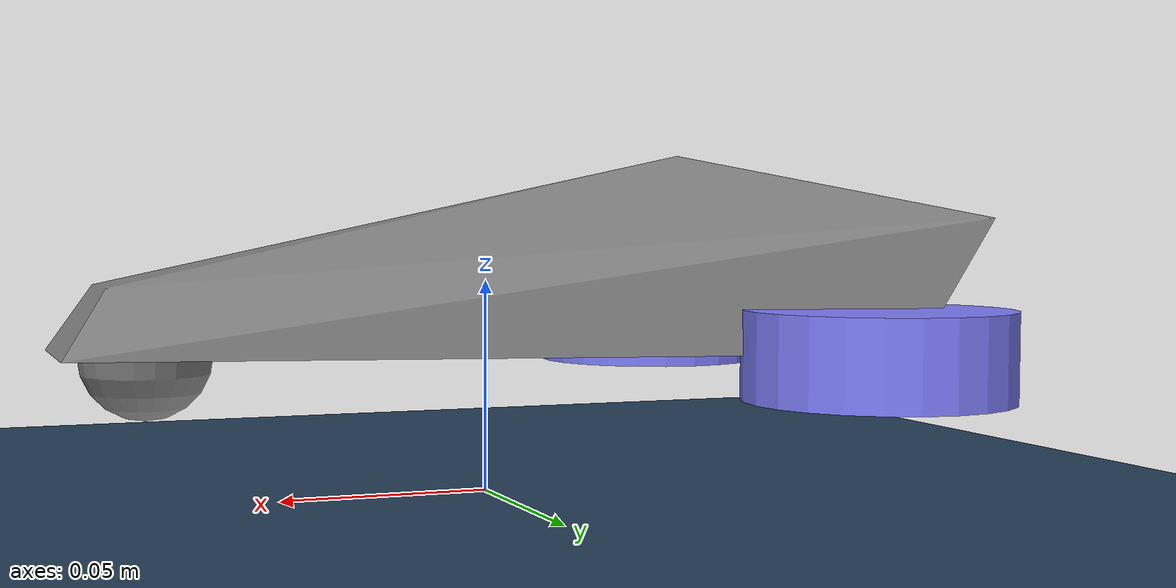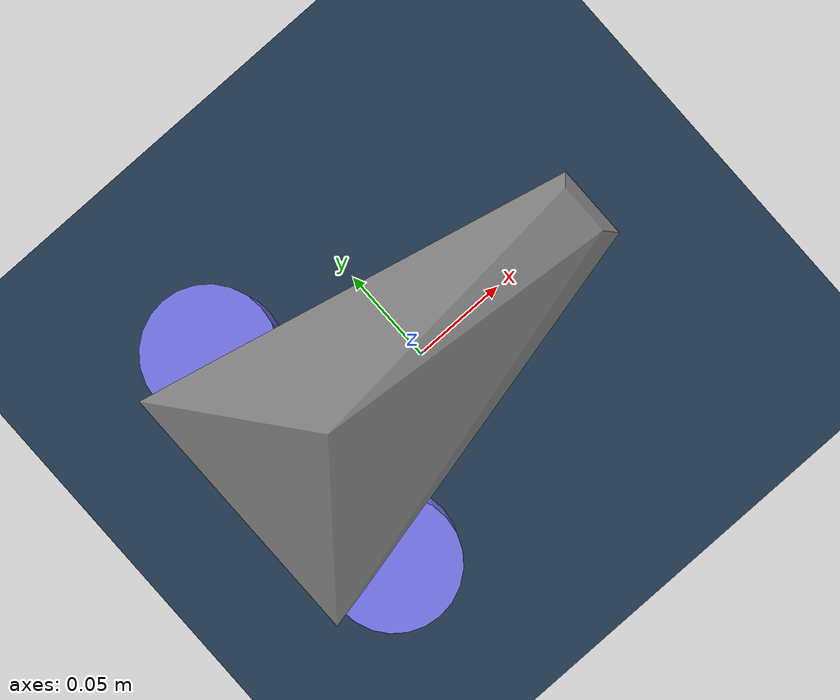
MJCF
<!-- mjpc/tasks/simple_car/car_model.xml -->
<mujoco>
  <compiler autolimits="true"/>
  <option timestep="0.002" iterations="50" solver="Newton" tolerance="1e-10">
    <flag gravity="enable"/>
  </option>

  <asset>
    <texture name="grid" type="2d" builtin="checker" width="512" height="512" rgb1=".1 .2 .3" rgb2=".2 .3 .4"/>
    <material name="grid" texture="grid" texrepeat="1 1" texuniform="true" reflectance=".2"/>
    <mesh name="chasis" scale=".01 .006 .0015"
      vertex=" 9   2   0
              -10  10  10
               9  -2   0
               10  3  -10
               10 -3  -10
              -8   10 -10
              -10 -10  10
              -8  -10 -10
              -5   0   20"/>
  </asset>

  <default>
    <joint damping=".1" armature="0.005"/>
    <geom friction="1 0.5 0.5" condim="3"/>
    <default class="wheel">
      <geom type="cylinder" size=".03 .01" rgba=".5 .5 1 1" friction="1.0 0.5 0.5"/>
    </default>
    <default class="decor">
      <site type="box" rgba=".5 1 .5 1"/>
    </default>
  </default>

  <worldbody>
    <geom type="plane" size="3 3 .01" material="grid" friction="1 0.5 0.5" condim="3"/>

    <!-- 平面小车 -->
    <body name="car" pos="0 0 .05">
      <!-- 2个slide关节用于XY平面运动 -->
      <joint name="slide_x" type="slide" axis="1 0 0"/>
      <joint name="slide_y" type="slide" axis="0 1 0"/>
      <!-- 移除slide_z，使用固定高度 -->

      <inertial pos="0 0 0" mass="1.2" diaginertia="0.015 0.015 0.02"/>
      <light name="top light" pos="0 0 0.1" mode="trackcom" diffuse=".8 .8 .8"/>
      <geom name="chasis" type="mesh" mesh="chasis"/>
      <geom name="front wheel" pos=".08 0 -.015" type="sphere" size=".015" condim="1" priority="1"/>

      <!-- 简化的轮子，只用于显示 -->
      <geom name="left_wheel_visual" pos="-.07 .06 -.015" type="cylinder" size=".03 .01" rgba=".5 .5 1 1"/>
      <geom name="right_wheel_visual" pos="-.07 -.06 -.015" type="cylinder" size=".03 .01" rgba=".5 .5 1 1"/>
    </body>
  </worldbody>

  <!-- 执行器配置：位置控制 -->
  <actuator>
    <position name="pos_x" joint="slide_x" ctrlrange="-3 3" kp="50"/>
    <position name="pos_y" joint="slide_y" ctrlrange="-3 3" kp="50"/>
  </actuator>
</mujoco>
